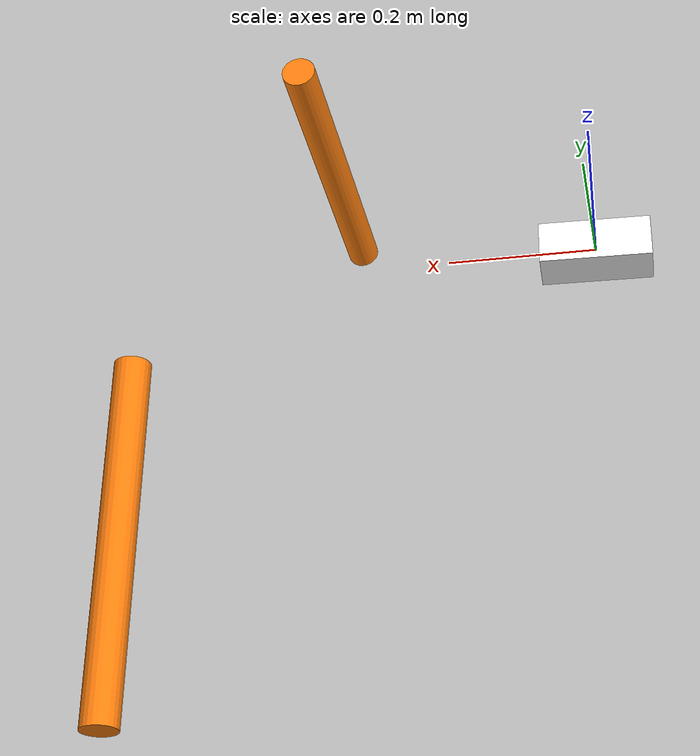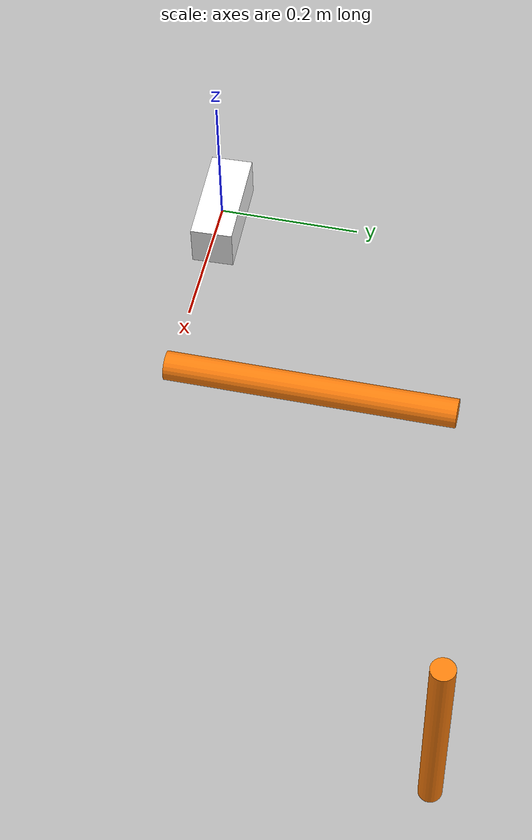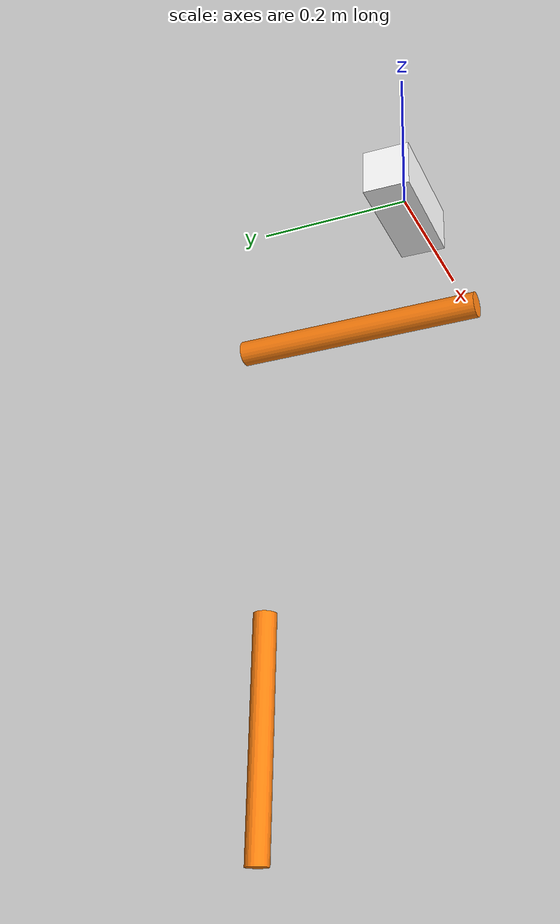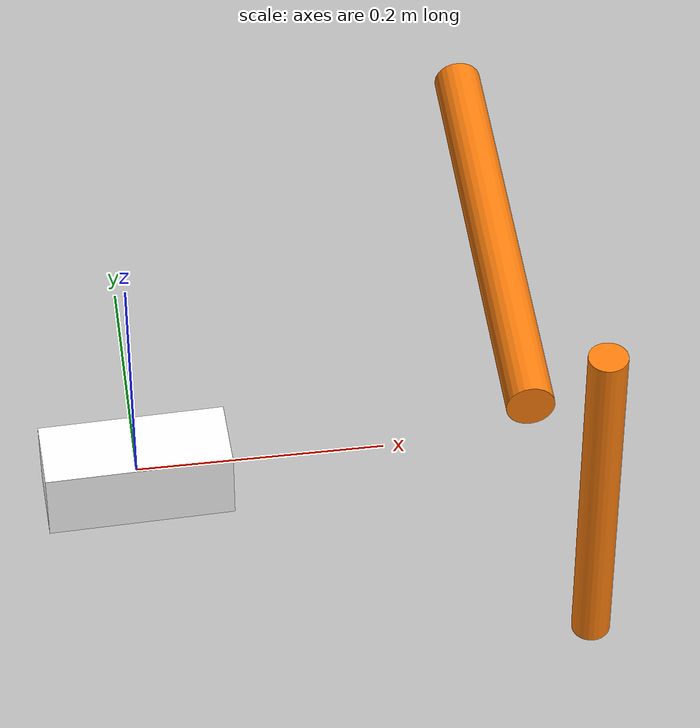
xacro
<?xml version="1.0"?>
<!-->The overall basic frame is robot tag.<-->
<robot xmlns:xacro="http://www.ros.org/wiki/xacro"
 	xmlns:sensor="http://playerstage.sourceforge.net/gazebo/xmlschema/#sensor"
    	xmlns:controller="http://playerstage.sourceforge.net/gazebo/xmlschema/#controller"
    	xmlns:interface="http://playerstage.sourceforge.net/gazebo/xmlschema/#interface"
	name="motor_xacro">

	<xacro:property name="length_pendulum" value="0.40" />
	<xacro:property name="radius_pendulum" value="0.02" />
	<xacro:macro name="default_inertial" params="mass">
		<inertial>
			<mass value="${mass}" />
			<inertia ixx="1.0" ixy="0.0" ixz="0.0"
                                iyy="1.0" iyz="0.0"
                                izz="1.0" />
		</inertial>
	</xacro:macro>

<!-->First part is the description of robot.<-->
	<link name="world"/>

	<link name="motor">
		<visual>
			<geometry>
				<box size="0.15 0.06 0.06"/>
			</geometry>
			<origin rpy="0 0 0.03" xyz="0 0 0"/>
			<material name="white">
				<color rgba="1 1 1 1" />
			</material>
		</visual>
		<collision>
			<origin rpy="0 0 0.03" xyz="0 0 0"/>
			<geometry>
				<box size="0.15 0.06 0.06" />
			</geometry>
		</collision>
		<!--xacro:default_inertial mass="0.8" /-->
		<inertial>
			<origin rpy="0 0 0.03" xyz="0 0 0"/>
			<mass value="0.8" />
			<inertia ixx="1.0" ixy="0.0" ixz="0.0"
                                iyy="1.0" iyz="0.0"
                                izz="1.0" />
		</inertial>
	</link>

	<link name="pendulum">
		<visual>
			<geometry>
				<cylinder length="${length_pendulum}" radius="${radius_pendulum}" />
			</geometry>
			<origin rpy="0 0 0" xyz="0.16 0 ${length_pendulum/2}"/>
			<material name="orange">
				<color rgba="1 0.5 0.05 1" />
			</material>
		</visual>
		<collision>
			<origin rpy="0 0 0" xyz="0.16 0 ${length_pendulum/2}"/>
			<geometry>
				<cylinder length="${length_pendulum}" radius="${radius_pendulum}" />
			</geometry>
		</collision>
		<!--xacro:default_inertial mass="1.3565" /-->
		<inertial>
			<origin rpy="0 0 0" xyz="0.16 0 ${length_pendulum/2}"/>
			<mass value="1.3565" />
			<inertia ixx="1.0" ixy="0.0" ixz="0.0"
                                iyy="1.0" iyz="0.0"
                                izz="1.0" />
		</inertial>
	</link>

	<link name="pendulum_2">
		<visual>
			<geometry>
				<cylinder length="${length_pendulum}" radius="${radius_pendulum}" />
			</geometry>
			<origin rpy="0 0 0" xyz="0.16 0 ${length_pendulum*3/2}"/>
			<material name="orange">
				<color rgba="1 0.5 0.05 1" />
			</material>
		</visual>
		<collision>
			<origin rpy="0 0 0" xyz="0.16 0 ${length_pendulum*3/2}"/>
			<geometry>
				<cylinder length="${length_pendulum}" radius="${radius_pendulum}" />
			</geometry>
		</collision>
		<inertial>
			<origin rpy="0 0 0" xyz="0.16 0 ${length_pendulum*3/2}"/>
			<mass value="1.3565" />
			<inertia ixx="1.0" ixy="0.0" ixz="0.0"
                                iyy="1.0" iyz="0.0"
                                izz="1.0" />
		</inertial>
	</link>

	<joint name="world_to_motor" type="fixed">
		<parent link="world"/>
		<child link="motor"/>
	</joint>

	<joint name="motor_to_pendulum" type="continuous">
		<parent link="motor" />
		<child link="pendulum" />
		<axis xyz="1 0 0" />
		<origin rpy="-1.5707 0 0" xyz="0.16 0 0.03" />
		<dynamics damping="0.5"/>
	</joint>

	<joint name="pendulum_to_pendulum_2" type="continuous">
		<parent link="pendulum" />
		<child link="pendulum_2" />
		<axis xyz="1 0 0" />
		<origin rpy="-1.5707 0 0" xyz="0.16 0 ${0.03+length_pendulum}" />
		<dynamics damping="0.5"/>
	</joint>

	<transmission name="tran1">
		<type>transmission_interface/SimpleTransmission</type>
		<joint name="motor_to_pendulum">
			<hardwareInterface>hardware_interface/EffortJointInterface</hardwareInterface>
		</joint>
		<actuator name="motor1">
			<hardwareInterface>hardware_interface/EffortJointInterface</hardwareInterface>
		<mechanicalReduction>1</mechanicalReduction>
		</actuator>
	</transmission>

<!-->Second part is the controller applied on the model.<-->
	<gazebo>
		<plugin name="gazebo_ros_control" filename="libgazebo_ros_control.so">
			<robotNamespace>/inverted_pendulum</robotNamespace>
			<legacyModeNS>true</legacyModeNS>
		</plugin>
	</gazebo>

</robot>
